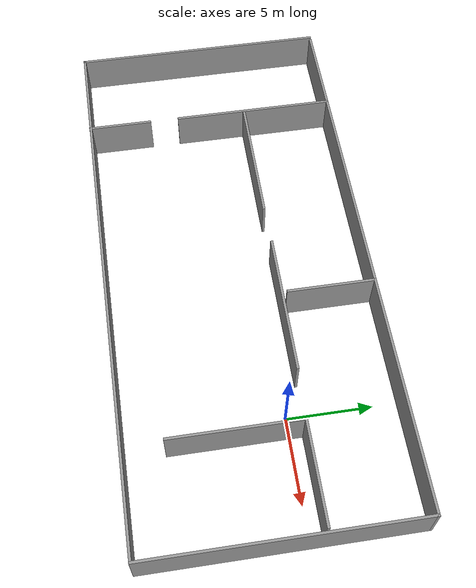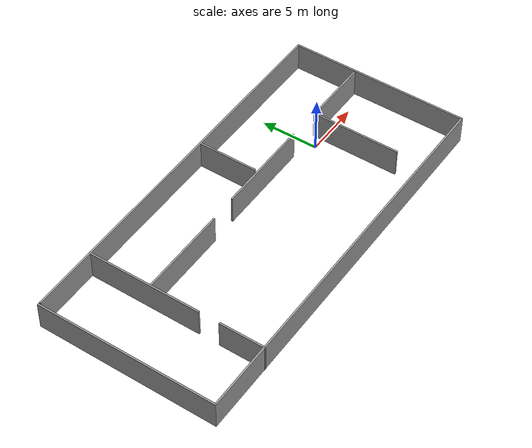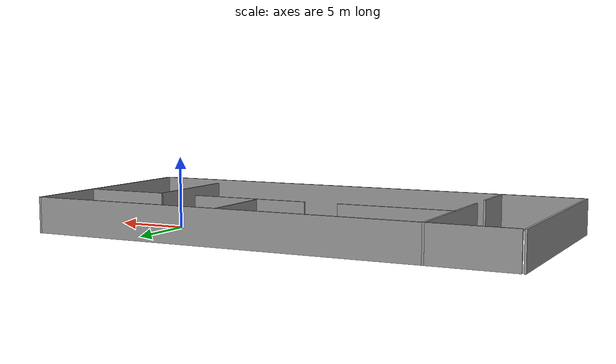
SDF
<?xml version='1.0'?>
<sdf version='1.7'>
  <model name='house.world'>
    <pose>-9.71224 -1.37686 0 0 -0 0</pose>
    <link name='Wall_0'>
      <collision name='Wall_0_Collision'>
        <geometry>
          <box>
            <size>15.75 0.15 2.5</size>
          </box>
        </geometry>
        <pose>0 0 1.25 0 -0 0</pose>
      </collision>
      <visual name='Wall_0_Visual'>
        <pose>0 0 1.25 0 -0 0</pose>
        <geometry>
          <box>
            <size>15.75 0.15 2.5</size>
          </box>
        </geometry>
        <material>
          <script>
            <uri>file://media/materials/scripts/gazebo.material</uri>
            <name>Gazebo/Grey</name>
          </script>
          <ambient>1 1 1 1</ambient>
        </material>
        <meta>
          <layer>0</layer>
        </meta>
      </visual>
      <pose>-16.925 0.009656 0 0 -0 -1.5708</pose>
    </link>
    <link name='Wall_1'>
      <collision name='Wall_1_Collision'>
        <geometry>
          <box>
            <size>34 0.15 2.5</size>
          </box>
        </geometry>
        <pose>0 0 1.25 0 -0 0</pose>
      </collision>
      <visual name='Wall_1_Visual'>
        <pose>0 0 1.25 0 -0 0</pose>
        <geometry>
          <box>
            <size>34 0.15 2.5</size>
          </box>
        </geometry>
        <material>
          <script>
            <uri>file://media/materials/scripts/gazebo.material</uri>
            <name>Gazebo/Grey</name>
          </script>
          <ambient>1 1 1 1</ambient>
        </material>
        <meta>
          <layer>0</layer>
        </meta>
      </visual>
      <pose>1e-06 -7.79035 0 0 -0 0</pose>
    </link>
    <link name='Wall_11'>
      <collision name='Wall_11_Collision'>
        <geometry>
          <box>
            <size>8.5 0.15 2.5</size>
          </box>
        </geometry>
        <pose>0 0 1.25 0 -0 0</pose>
      </collision>
      <visual name='Wall_11_Visual'>
        <pose>0 0 1.25 0 -0 0</pose>
        <geometry>
          <box>
            <size>8.5 0.15 2.5</size>
          </box>
        </geometry>
        <material>
          <script>
            <uri>file://media/materials/scripts/gazebo.material</uri>
            <name>Gazebo/Grey</name>
          </script>
          <ambient>1 1 1 1</ambient>
        </material>
        <meta>
          <layer>0</layer>
        </meta>
      </visual>
      <pose>3.62677 2.30061 0 0 -0 0</pose>
    </link>
    <link name='Wall_13'>
      <collision name='Wall_13_Collision'>
        <geometry>
          <box>
            <size>6 0.15 2.5</size>
          </box>
        </geometry>
        <pose>0 0 1.25 0 -0 0</pose>
      </collision>
      <visual name='Wall_13_Visual'>
        <pose>0 0 1.25 0 -0 0</pose>
        <geometry>
          <box>
            <size>6 0.15 2.5</size>
          </box>
        </geometry>
        <material>
          <script>
            <uri>file://media/materials/scripts/gazebo.material</uri>
            <name>Gazebo/Grey</name>
          </script>
          <ambient>1 1 1 1</ambient>
        </material>
        <meta>
          <layer>0</layer>
        </meta>
      </visual>
      <pose>13.7546 2.1936 0 0 -0 3.14159</pose>
    </link>
    <link name='Wall_15'>
      <collision name='Wall_15_Collision'>
        <geometry>
          <box>
            <size>5.25 0.15 2.5</size>
          </box>
        </geometry>
        <pose>0 0 1.25 0 -0 0</pose>
      </collision>
      <visual name='Wall_15_Visual'>
        <pose>0 0 1.25 0 -0 0</pose>
        <geometry>
          <box>
            <size>5.25 0.15 2.5</size>
          </box>
        </geometry>
        <material>
          <script>
            <uri>file://media/materials/scripts/gazebo.material</uri>
            <name>Gazebo/Grey</name>
          </script>
          <ambient>1 1 1 1</ambient>
        </material>
        <meta>
          <layer>0</layer>
        </meta>
      </visual>
      <pose>2.92944 5.20786 0 0 -0 -1.5708</pose>
    </link>
    <link name='Wall_17'>
      <collision name='Wall_17_Collision'>
        <geometry>
          <box>
            <size>7.75 0.15 2.5</size>
          </box>
        </geometry>
        <pose>0 0 1.25 0 -0 0</pose>
      </collision>
      <visual name='Wall_17_Visual'>
        <pose>0 0 1.25 0 -0 0</pose>
        <geometry>
          <box>
            <size>7.75 0.15 2.5</size>
          </box>
        </geometry>
        <material>
          <script>
            <uri>file://media/materials/scripts/gazebo.material</uri>
            <name>Gazebo/Grey</name>
          </script>
          <ambient>1 1 1 1</ambient>
        </material>
        <meta>
          <layer>0</layer>
        </meta>
      </visual>
      <pose>10.8296 -1.6064 0 0 -0 -1.5708</pose>
    </link>
    <link name='Wall_2'>
      <collision name='Wall_2_Collision'>
        <geometry>
          <box>
            <size>15.75 0.15 2.5</size>
          </box>
        </geometry>
        <pose>0 0 1.25 0 -0 0</pose>
      </collision>
      <visual name='Wall_2_Visual'>
        <pose>0 0 1.25 0 -0 0</pose>
        <geometry>
          <box>
            <size>15.75 0.15 2.5</size>
          </box>
        </geometry>
        <material>
          <script>
            <uri>file://media/materials/scripts/gazebo.material</uri>
            <name>Gazebo/Grey</name>
          </script>
          <ambient>1 1 1 1</ambient>
        </material>
        <meta>
          <layer>0</layer>
        </meta>
      </visual>
      <pose>16.925 0.009656 0 0 -0 1.5708</pose>
    </link>
    <link name='Wall_3'>
      <collision name='Wall_3_Collision'>
        <geometry>
          <box>
            <size>33.75 0.15 2.5</size>
          </box>
        </geometry>
        <pose>0 0 1.25 0 -0 0</pose>
      </collision>
      <visual name='Wall_3_Visual'>
        <pose>0 0 1.25 0 -0 0</pose>
        <geometry>
          <box>
            <size>33.75 0.15 2.5</size>
          </box>
        </geometry>
        <material>
          <script>
            <uri>file://media/materials/scripts/gazebo.material</uri>
            <name>Gazebo/Grey</name>
          </script>
          <ambient>1 1 1 1</ambient>
        </material>
        <meta>
          <layer>0</layer>
        </meta>
      </visual>
      <pose>0.125001 7.80966 0 0 -0 3.14159</pose>
    </link>
    <link name='Wall_5'>
      <collision name='Wall_5_Collision'>
        <geometry>
          <box>
            <size>10 0.15 2.5</size>
          </box>
        </geometry>
        <pose>0 0 1.25 0 -0 0</pose>
      </collision>
      <visual name='Wall_5_Visual'>
        <pose>0 0 1.25 0 -0 0</pose>
        <geometry>
          <box>
            <size>10 0.15 2.5</size>
          </box>
        </geometry>
        <material>
          <script>
            <uri>file://media/materials/scripts/gazebo.material</uri>
            <name>Gazebo/Grey</name>
          </script>
          <ambient>1 1 1 1</ambient>
        </material>
        <meta>
          <layer>0</layer>
        </meta>
      </visual>
      <pose>-10.9812 2.88637 0 0 -0 -1.5708</pose>
    </link>
    <link name='Wall_7'>
      <collision name='Wall_7_Collision'>
        <geometry>
          <box>
            <size>4 0.15 2.5</size>
          </box>
        </geometry>
        <pose>0 0 1.25 0 -0 0</pose>
      </collision>
      <visual name='Wall_7_Visual'>
        <pose>0 0 1.25 0 -0 0</pose>
        <geometry>
          <box>
            <size>4 0.15 2.5</size>
          </box>
        </geometry>
        <material>
          <script>
            <uri>file://media/materials/scripts/gazebo.material</uri>
            <name>Gazebo/Grey</name>
          </script>
          <ambient>1 1 1 1</ambient>
        </material>
        <meta>
          <layer>0</layer>
        </meta>
      </visual>
      <pose>-10.9812 -5.88636 0 0 -0 1.5708</pose>
    </link>
    <link name='Wall_9'>
      <collision name='Wall_9_Collision'>
        <geometry>
          <box>
            <size>8 0.15 2.5</size>
          </box>
        </geometry>
        <pose>0 0 1.25 0 -0 0</pose>
      </collision>
      <visual name='Wall_9_Visual'>
        <pose>0 0 1.25 0 -0 0</pose>
        <geometry>
          <box>
            <size>8 0.15 2.5</size>
          </box>
        </geometry>
        <material>
          <script>
            <uri>file://media/materials/scripts/gazebo.material</uri>
            <name>Gazebo/Grey</name>
          </script>
          <ambient>1 1 1 1</ambient>
        </material>
        <meta>
          <layer>0</layer>
        </meta>
      </visual>
      <pose>-7.00271 2.2471 0 0 -0 0</pose>
    </link>
    <static>1</static>
  </model>
</sdf>
